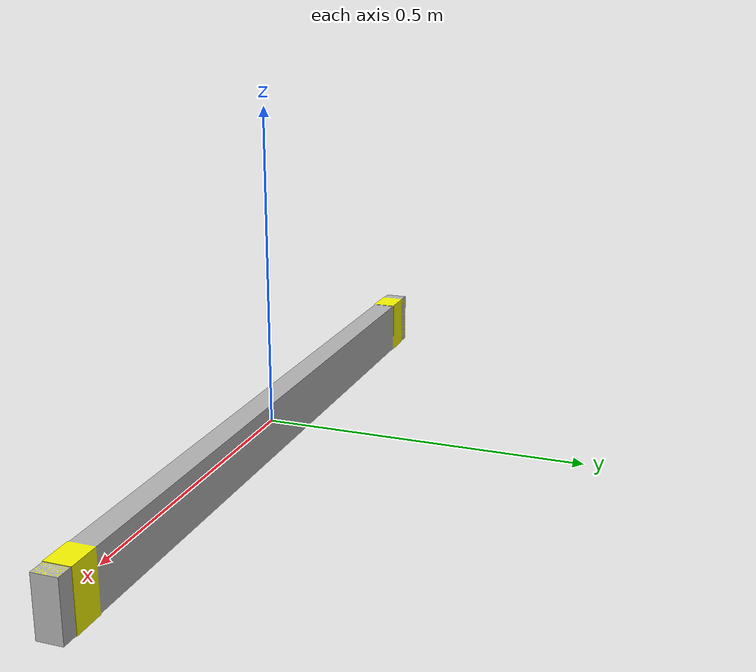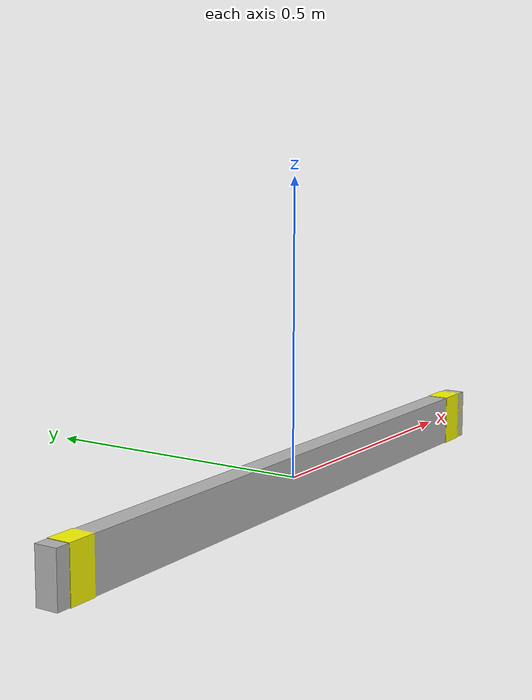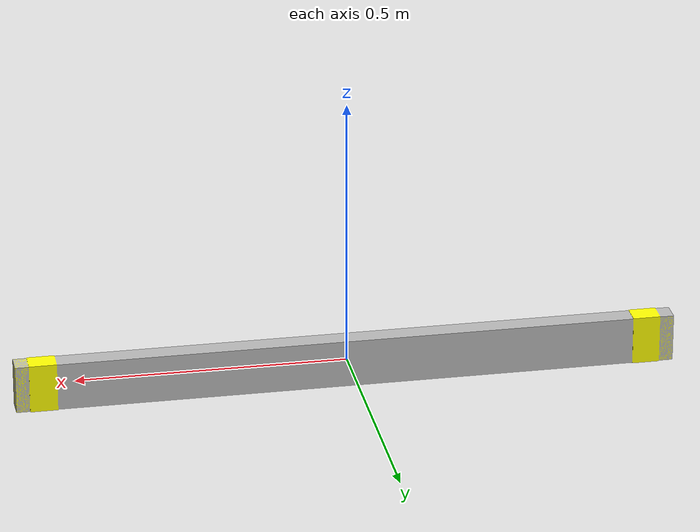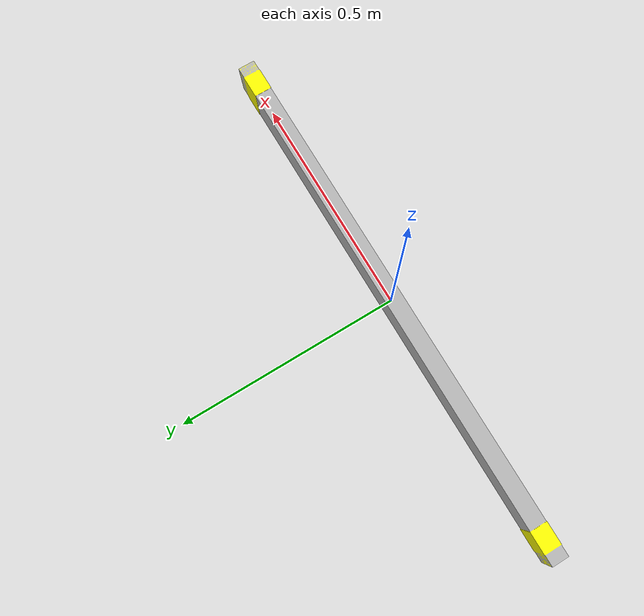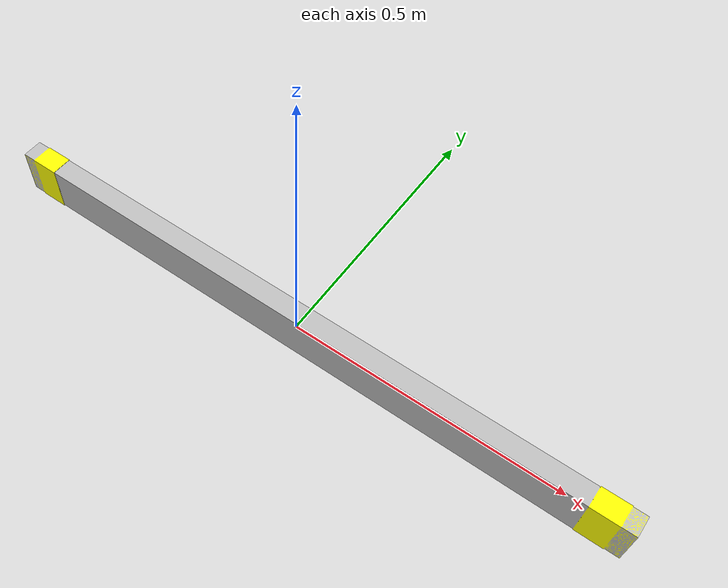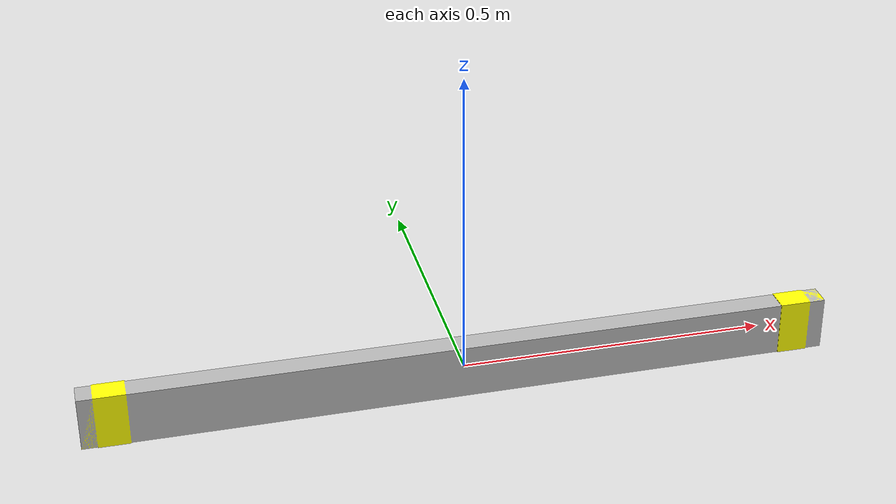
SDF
<?xml version="1.0" ?>
<sdf version="1.4">
  <model name="lumber_2x4x48">
    <link name="link">
      <inertial>
        <mass>1.4111</mass>
        <inertia>
          <ixx> 0.0011</ixx>
          <ixy> 0.000</ixy>
          <ixz> 0.000</ixz>
          <iyy> 0.1771</iyy>
          <iyz> 0.00</iyz>
          <izz> 0.1763</izz>
        </inertia>
      </inertial>
      <collision name="collision">
        <geometry>
          <box>
            <size>1.2192 0.038 0.0888</size>
          </box>
        </geometry>
        <surface>
          <bounce>
            <restitution_coefficient>0.01</restitution_coefficient>
            <threshold>5.0</threshold>
          </bounce>
          <friction>
            <ode>
              <mu>5</mu>
              <mu2>5</mu2>
            </ode>
          </friction>
          <contact>
            <ode>
              <soft_cfm>0.001 </soft_cfm><!--"sponginess", 0.0=hard-->
              <kp>10000.0 </kp>
              <kd>1000.0 </kd>
              <max_vel>0.01 </max_vel>
              <min_depth>0.001 </min_depth>
            </ode>
          </contact>
        </surface>
      </collision>

      <visual name="visual">
        <geometry>
          <mesh>
            <uri>model://drc_practice_2x4/meshes/2x4x48.dae</uri>
          </mesh>
        </geometry>
      </visual>
    </link>
  </model>

</sdf>
